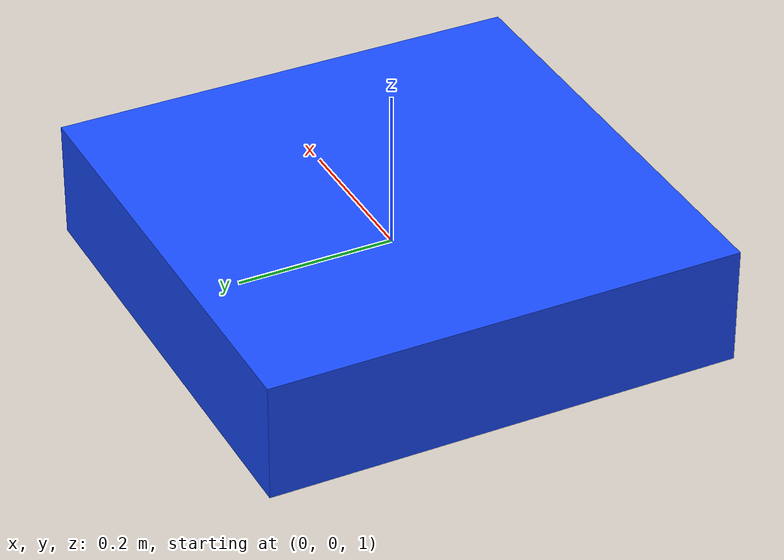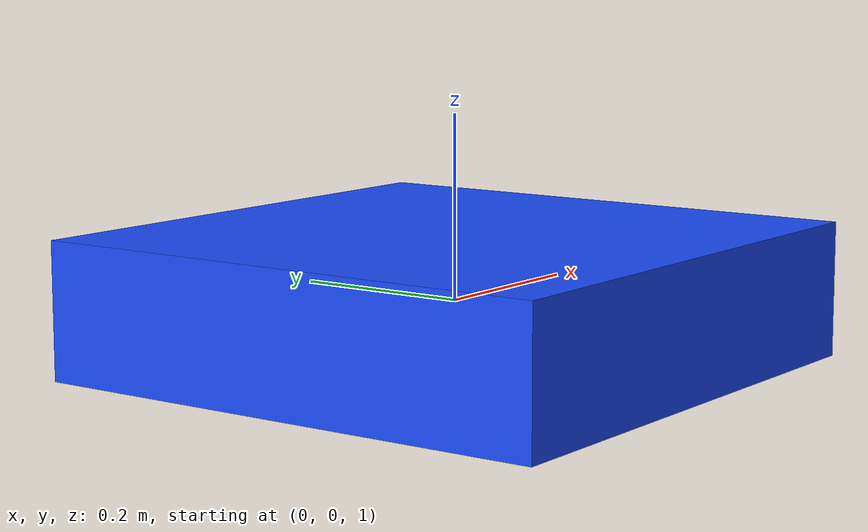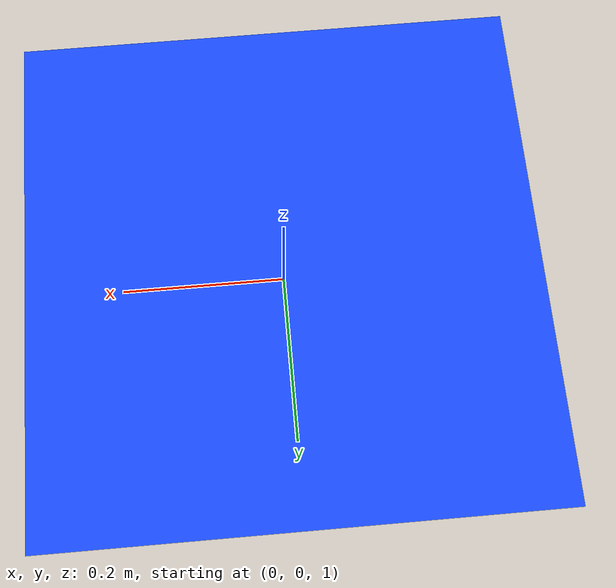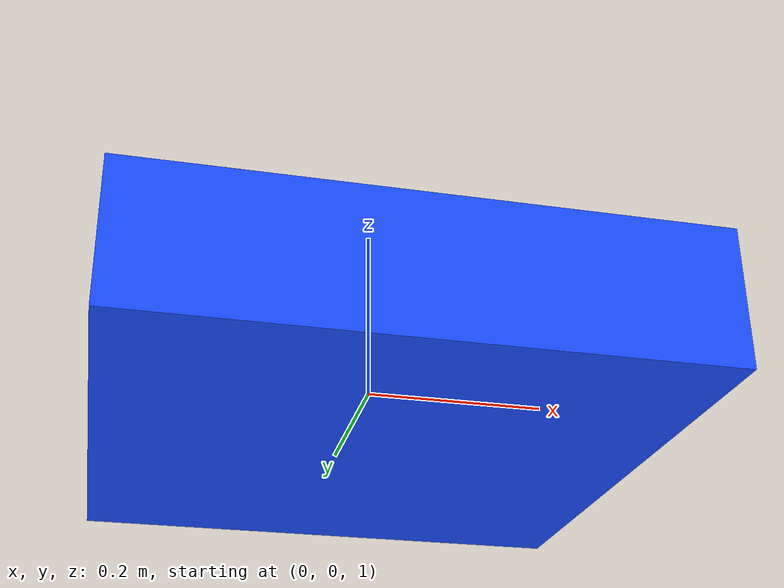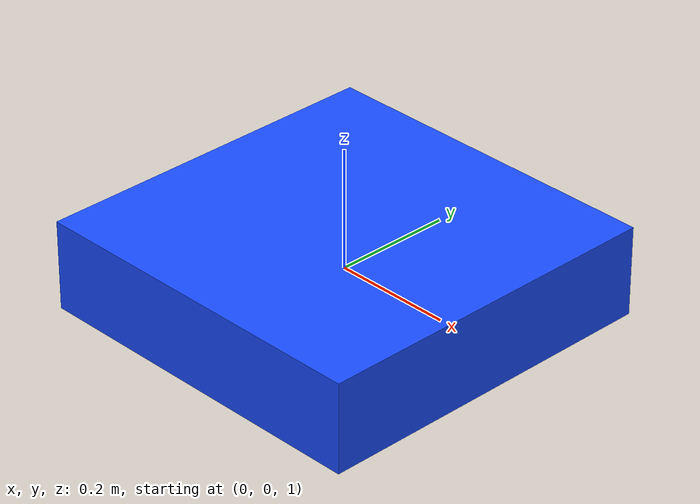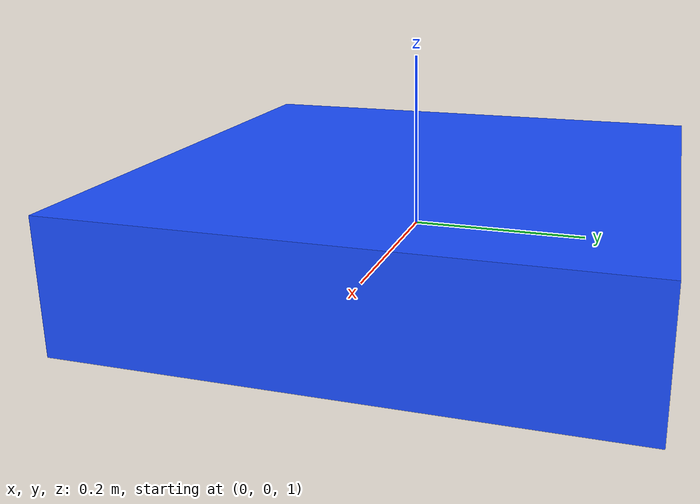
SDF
<?xml version="1.0"?>
<sdf version="1.6"><model name="uav"><link name="base_link"><pose>0 0 1.0 0 0 0</pose><inertial><mass>1.0</mass></inertial><visual name="body"><geometry><box><size>0.6 0.6 0.15</size></box></geometry><material><ambient>0.1 0.3 1 1</ambient></material></visual><collision name="collision"><geometry><box><size>0.6 0.6 0.15</size></box></geometry></collision></link></model></sdf>
